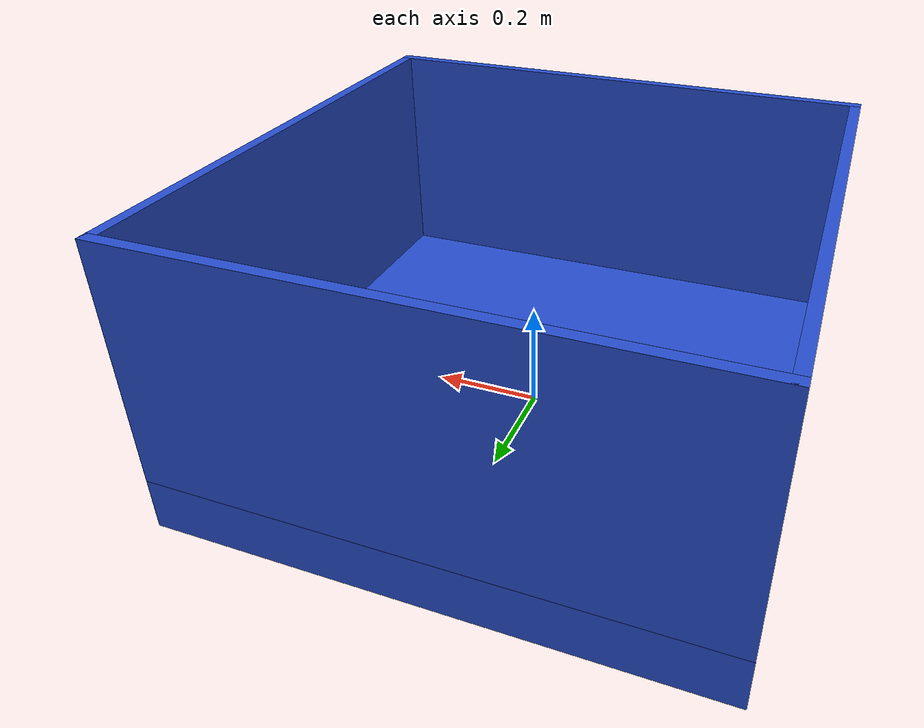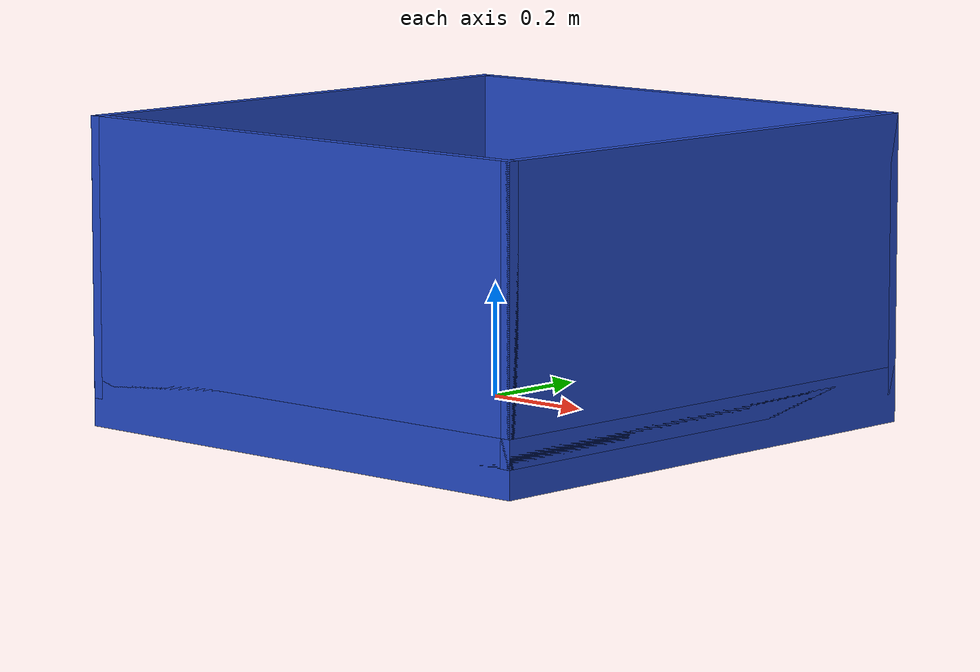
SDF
<?xml version="1.0" ?>
<sdf version="1.5">
  <model name="AIGC2_box">
    <static>true</static>
    <link name="link">
      <pose>0.0 0 0 0 0 0</pose>
      <collision name="collision">
        <geometry>
          <box>
            <size>1.0 1.0 0.1</size>
          </box>
        </geometry>
      </collision>
      <visual name="visual">
        <cast_shadows>false</cast_shadows>
        <geometry>
          <box>
            <size>1.0 1.0 0.1</size>
          </box>
        </geometry>
        <material>
			<script>
				<name>Gazebo/Blue</name>
				<uri>file://media/materials/scripts/gazebo.material</uri>
			</script>
        </material>
      </visual>
    </link>

    <link name="link1">
      <pose>0.0 0.49 0.25 0 0 0</pose>
      <collision name="collision">
        <geometry>
          <box>
            <size>1.0 0.02 0.5</size>
          </box>
        </geometry>
      </collision>
      <visual name="visual">
        <cast_shadows>false</cast_shadows>
        <geometry>
          <box>
            <size>1.0 0.02 0.5</size>
          </box>
        </geometry>
        <material>
			<script>
				<name>Gazebo/Blue</name>
				<uri>file://media/materials/scripts/gazebo.material</uri>
			</script>
        </material>
      </visual>
    </link>

    <link name="link2">
      <pose>0.0 -0.49 0.25 0 0 0</pose>
      <collision name="collision">
        <geometry>
          <box>
            <size>1.0 0.02 0.5</size>
          </box>
        </geometry>
      </collision>
      <visual name="visual">
        <cast_shadows>false</cast_shadows>
        <geometry>
          <box>
            <size>1.0 0.02 0.5</size>
          </box>
        </geometry>
        <material>
			<script>
				<name>Gazebo/Blue</name>
				<uri>file://media/materials/scripts/gazebo.material</uri>
			</script>
        </material>
      </visual>
    </link>

    <link name="link3">
      <pose>0.49 0.0 0.25 0 0 0</pose>
      <collision name="collision">
        <geometry>
          <box>
            <size>0.02 1.0 0.5</size>
          </box>
        </geometry>
      </collision>
      <visual name="visual">
        <cast_shadows>false</cast_shadows>
        <geometry>
          <box>
            <size>0.02 1.0 0.5</size>
          </box>
        </geometry>
        <material>
			<script>
				<name>Gazebo/Blue</name>
				<uri>file://media/materials/scripts/gazebo.material</uri>
			</script>
        </material>
      </visual>
    </link>

    <link name="link4">
      <pose>-0.49 0.0 0.25 0 0 0</pose>
      <collision name="collision">
        <geometry>
          <box>
            <size>0.02 1.0 0.5</size>
          </box>
        </geometry>
      </collision>
      <visual name="visual">
        <cast_shadows>false</cast_shadows>
        <geometry>
          <box>
            <size>0.02 1.0 0.5</size>
          </box>
        </geometry>
        <material>
			<script>
				<name>Gazebo/Blue</name>
				<uri>file://media/materials/scripts/gazebo.material</uri>
			</script>
        </material>
      </visual>
    </link>

  </model>
</sdf>
